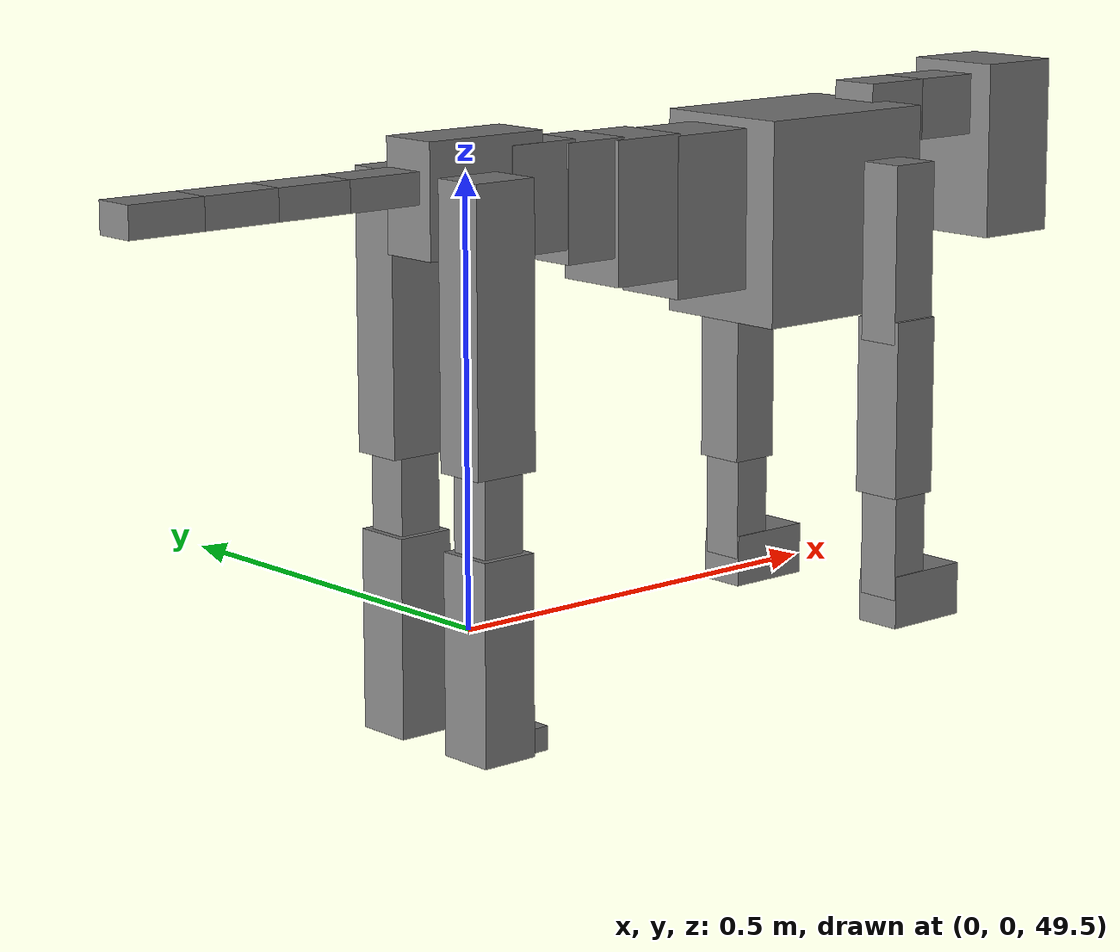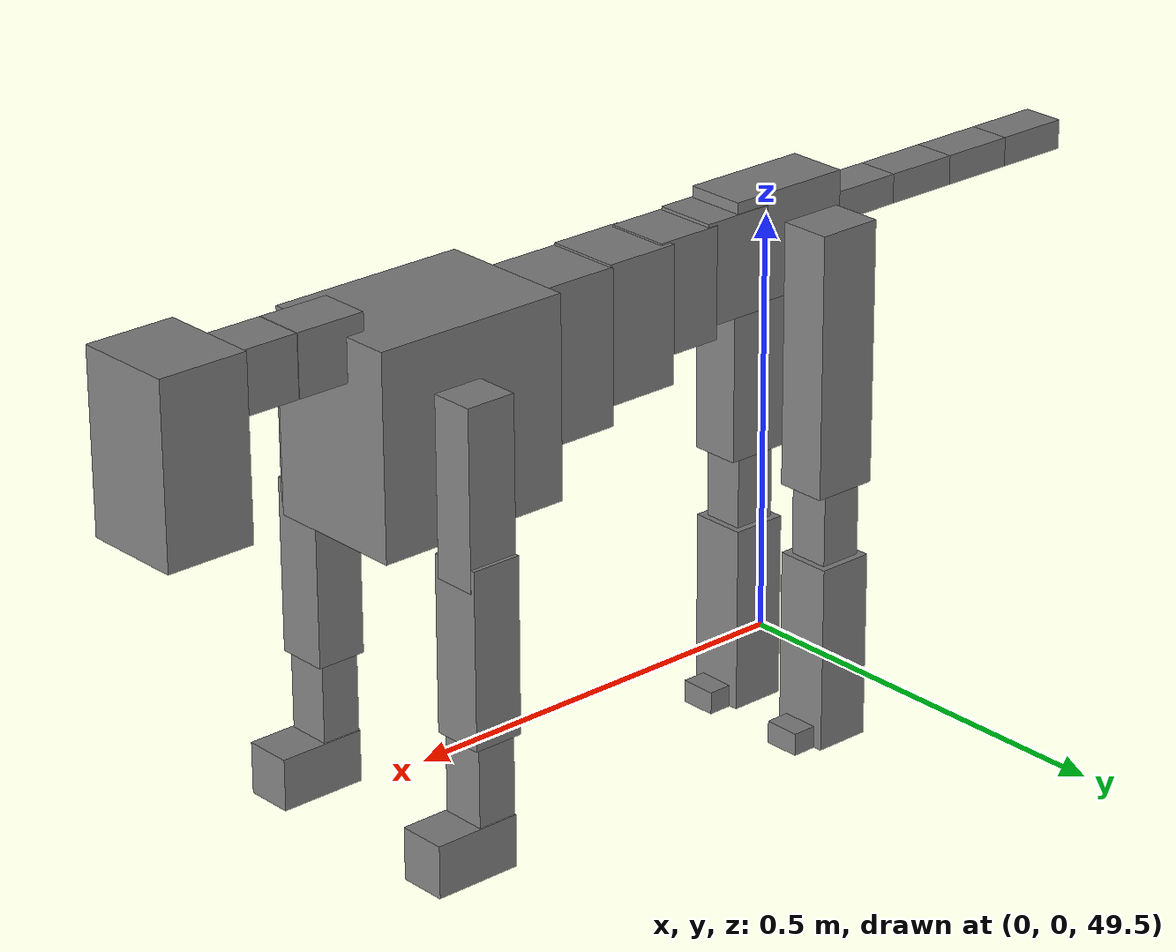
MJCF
<mujoco model="dog">

    <default>
        <joint armature="0.02" stiffness="1" damping="0.2" limited="true"/>
        <geom condim="3" friction="1 0.05 0.05" margin="0.01"/>
        <motor ctrllimited="true" ctrlrange="-1.0 1.0" forcelimited="true" gear="50"/>
    </default>

    <compiler inertiafromgeom="true" angle="radian"/>

    <option timestep="0.016" iterations="50" tolerance="1e-10" solver="Newton" jacobian="dense" cone="pyramidal"/>

    <size nconmax="20000" njmax="60000" nstack="5000000"/>
    <visual>
        <map force="0.1" zfar="30"/>
        <rgba haze="0.15 0.25 0.35 1"/>
        <quality shadowsize="2048"/>
        <global offwidth="800" offheight="800"/>
    </visual>

    <asset>
        <texture type="skybox" builtin="gradient" rgb1="0.3 0.5 0.7" rgb2="0 0 0" width="512" height="512"/>
        <texture name="texplane" type="2d" builtin="checker" rgb1=".2 .3 .4" rgb2=".1 0.15 0.2" width="512" height="512"
                 mark="cross" markrgb=".8 .8 .8"/>
        <texture name="texgeom" type="cube" builtin="flat" mark="cross" width="127" height="1278" rgb1="0.8 0.6 0.4"
                 rgb2="0.8 0.6 0.4" markrgb="1 1 1" random="0.01"/>

        <material name="matplane" reflectance="0.3" texture="texplane" texrepeat="1 1" texuniform="true"/>
        <material name="matgeom" texture="texgeom" texuniform="true" rgba="0.8 0.6 .4 1"/>
    </asset>

    <worldbody>
        <geom name="floor" pos="0 0 0" size="0 0 .25" type="plane" material="matplane" condim="3"/>

        <light directional="false" diffuse=".2 .2 .2" specular="0 0 0" pos="0 0 5" dir="0 0 -1" castshadow="false"/>
        <light mode="targetbodycom" target="torso" directional="false" diffuse=".8 .8 .8" specular="0.3 0.3 0.3"
               pos="0 0 4.0" dir="0 0 -1"/>

        <body name="root" pos="0 0 50">
            <freejoint name="root_1"/>
            <geom type="box" pos="0 0 -0.02" size="0.0774  0.0358  0.063" density="2030"/>

            <body name="spine1" pos="0.054 0 0">
                <joint name="spine1_y" axis="0 1 0" range="0 0.7" limited="true"/>
                <geom type="box" pos="0.02375 0 -0.03" size="0.04375  0.0375  0.05985" density="2030"/>

                <body name="spine2" pos="0.0612 0 0">
                    <joint name="spine2_y" axis="0 1 0" range="-0.15 0.15" limited="true"/>
                    <geom type="box" pos="0.03555  0  -0.04" size="0.04055  0.039  0.06615" density="2030"/>

                    <body name="spine3" pos="0.0730 0 0">
                        <joint name="spine3_y" axis="0 1 0" range="-0.15 0.15" limited="true"/>
                        <geom type="box" pos="0.03555  0  -0.057" size="0.04555  0.0445  0.081" density="2030"/>

                        <body name="spine4" pos="0.0780 0 0">
                            <joint name="spine4_y" axis="0 1 0" range="-0.15 0.15" limited="true"/>
                            <geom type="box" pos="0.05265  0  -0.07" size="0.05265  0.045  0.09135" density="2030"/>

                            <body name="torso" pos="0.1082 0 0">
                                <joint name="torso_y" axis="0 1 0" range="-0.15 0.15" limited="true"/>
                                <geom type="box" pos="0.11925  0  -0.085" size="0.11925  0.085  0.11745"
                                      density="2030"/>

                                <body name="neck1" pos="0.2160  0   0.0180">
                                    <joint name="neck1_y" axis="0 1 0" range="-1.2  -1" limited="true"/>
                                    <geom type="box" pos="0.0423  0  0" size="0.0423  0.03  0.036" density="2325"/>

                                    <body name="neck2" pos="0.0853  0  0">
                                        <joint name="neck2_y" axis="0 1 0" range="0.1  0" limited="true"/>
                                        <geom type="box" pos="0.0423  0  0" size="0.0423  0.03  0.036" density="2325"/>

                                        <body name="head" pos="0.0853  0  0">
                                            <joint name="head_y" axis="0 1 0" range="-0.3  -0.2" limited="true"/>
                                            <geom type="box" pos="0.0531  0  -0.055" size="0.0531  0.06  0.1044"
                                                  density="4030"/>

                                        </body>
                                    </body>
                                </body>

                                <body name="front_shoulder" pos="0.156  0   -0.0480">
                                    <joint name="front_shoulder_y" axis="0 1 0" range="-1 1.5" limited="true"/>
                                    <geom type="box" pos="0 0.13 -0.0760" size="0.0303  0.0259  0.1027" density="1158"/>
                                    <geom type="box" pos="0 -0.13 -0.0760" size="0.0303  0.0259  0.1027"
                                          density="1158"/>

                                    <body name="front_elbow" pos="0  0  -0.1521">
                                        <joint name="front_elbow_y" axis="0 1 0" range="-2 0" limited="true"/>
                                        <geom type="box" pos="0 0.13 -0.1028" size="0.0301  0.0308  0.1028"
                                              density="1081"/>
                                        <geom type="box" pos="0 -0.13 -0.1028" size="0.0301  0.0308  0.1028"
                                              density="1081"/>

                                        <body name="front_wrist" pos="0  0  -0.2055">
                                            <joint name="front_wrist_y" axis="0 1 0" range="-0.2 0" limited="true"/>
                                            <geom type="box" pos="0 0.13 -0.0541" size="0.0240  0.0267  0.0673"
                                                  density="1664"/>
                                            <geom type="box" pos="0 -0.13 -0.0541" size="0.0240  0.0267  0.0673"
                                                  density="1664"/>

                                            <body name="front_finger_end" pos="0  0  -0.1083">
                                                <joint name="front_finger_y" axis="0 1 0" range="-0.4 1"
                                                       limited="true"/>
                                                <geom type="box" pos="0.0286  0.13  -0.0158"
                                                      size="0.0525  0.0286  0.0308" density="1515"/>
                                                <geom type="box" pos="0.0286  -0.13  -0.0158"
                                                      size="0.0525  0.0286  0.0308" density="1515"/>

                                            </body>

                                        </body>
                                    </body>
                                </body>

                            </body>
                        </body>
                    </body>
                </body>
            </body>

            <body name="back_hip" pos="-0.03 0 -0.018">
                <joint name="back_hip_y" axis="0 1 0" range="-1.5 0.3" limited="true"/>
                <geom type="box" pos="0 0.07 -0.1336" size="0.0393  0.0308  0.1564" density="1154"/>
                <geom type="box" pos="0 -0.07 -0.1336" size="0.0393  0.0308  0.1564" density="1154"/>

                <body name="back_knee" pos="0  0  -0.2673">
                    <joint name="back_knee_y" axis="0 1 0" range="0 2.8" limited="true"/>
                    <geom type="box" pos="0 0.07 -0.0605" size="0.0259  0.0255  0.0761" density="1227"/>
                    <geom type="box" pos="0 -0.07 -0.0605" size="0.0259  0.0255  0.0761" density="1227"/>

                    <body name="back_ankle" pos="0  0  -0.1210">
                        <joint name="back_ankle_y" axis="0 1 0" range="-2.2 0" limited="true"/>
                        <geom type="box" pos="0 0.07 -0.1013" size="0.0339  0.0339  0.1126" density="1284"/>
                        <geom type="box" pos="0 -0.07 -0.1013" size="0.0339  0.0339  0.1126" density="1284"/>

                        <body name="back_toe_end" pos="0  0  -0.2027">
                            <joint name="back_toe_y" axis="0 1 0" range="-0.4 1" limited="true"/>
                            <geom type="box" pos="0.0222  0.07  0.0014" size="0.0407  0.0222  0.0136" density="1515"/>
                            <geom type="box" pos="0.0222  -0.07  0.0014" size="0.0407  0.0222  0.0136" density="1515"/>

                        </body>
                    </body>
                </body>
            </body>

            <body name="tail1" pos="-0.074 0 -0.006">
                <joint name="tail1_y" axis="0 1 0" range="-0.2 0.2" limited="true"/>
                <geom type="box" pos="-0.0536  0  0" size="0.045  0.025  0.0175" density="1587"/>

                <body name="tail2" pos="-0.09 0 0">
                    <joint name="tail2_y" axis="0 1 0" range="-0.2 0.2" limited="true"/>
                    <geom type="box" pos="-0.0536  0  0" size="0.045  0.025  0.0175" density="1587"/>

                    <body name="tail3" pos="-0.09 0 0">
                        <joint name="tail3_y" axis="0 1 0" range="-0.2 0.2" limited="true"/>
                        <geom type="box" pos="-0.0536  0  0" size="0.045  0.025  0.0175" density="1587"/>

                        <body name="tail4" pos="-0.09 0 0">
                            <joint name="tail4_y" axis="0 1 0" range="-0.2 0.2" limited="true"/>
                            <geom type="box" pos="-0.0536  0  0" size="0.045  0.025  0.0175" density="1587"/>

                        </body>
                    </body>
                </body>
            </body>
        </body>
    </worldbody>

    <actuator>
        <motor joint="spine1_y" forcerange="-150 150     "/>
        <motor joint="spine2_y" forcerange="-150 150     "/>
        <motor joint="spine3_y" forcerange="-150 150     "/>
        <motor joint="spine4_y" forcerange="-150 150     "/>
        <motor joint="torso_y" forcerange="-150 150     "/>
        <motor joint="neck1_y" forcerange="-100 100       "/>
        <motor joint="neck2_y" forcerange="-100 100       "/>
        <motor joint="head_y" forcerange="-150 150       "/>
        <motor joint="front_shoulder_y" forcerange="-163.34 109.49"/>
        <motor joint="front_elbow_y" forcerange="-160.86 162.95"/>
        <motor joint="front_wrist_y" forcerange="-144.17 69.25"/>
        <motor joint="front_finger_y" forcerange="-38.04 74.57"/>
        <motor joint="back_hip_y" forcerange="-341.25 269.89"/>
        <motor joint="back_knee_y" forcerange="-264.81 306.58"/>
        <motor joint="back_angle_y" forcerange="-238.12 204.45"/>
        <motor joint="back_toe_y" forcerange="-49.30 48.09"/>
        <motor joint="tail1_y" forcerange="-50 50     "/>
        <motor joint="tail2_y" forcerange="-50 50     "/>
        <motor joint="tail3_y" forcerange="-50 50     "/>
        <motor joint="tail4_y" forcerange="-50 50     "/>
    </actuator>
</mujoco>
